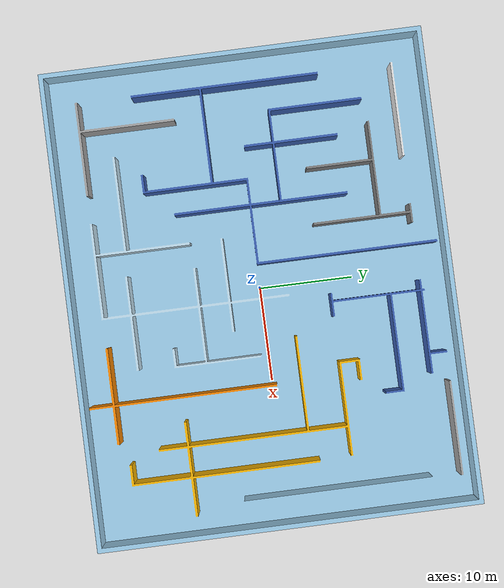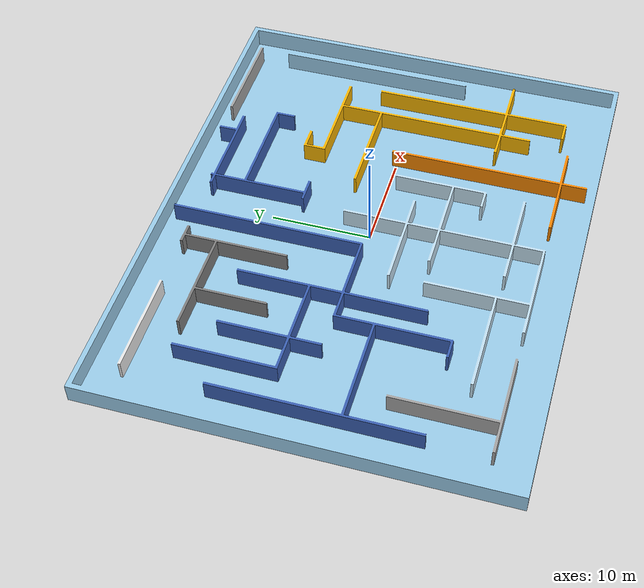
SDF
<?xml version="1.0"?>
<sdf version="1.4">
  <world name="default">
 <!-- A global light source -->
    <include>
      <uri>model://sun</uri>
    </include>
<!--Chalenger Maze-->
    <include>
      <uri>model://novo_mundo</uri>
    </include>

  </world>
</sdf>

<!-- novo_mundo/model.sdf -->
<sdf version='1.6'>
  <model name="senai_cimatec">
    <pose>0 0 0  0 0 0</pose>
    <static>true</static>
    <link name="building_structures">
      <visual name="visual">
        <geometry>
          <mesh><uri>file://novo_mundo/mesh/novo_mundo.dae</uri></mesh>
        </geometry>
      </visual>
      <collision name='collision'>
        <geometry>
          <mesh>
            <uri>file://novo_mundo/mesh/novo_mundo.dae</uri>
          </mesh>
        </geometry>
        <surface>
          <bounce/>
          <friction>
            <ode/>
          </friction>
          <contact>
            <ode/>
          </contact>
        </surface>
      </collision>
      <gravity>1</gravity>
    </link>
  </model>
</sdf>
